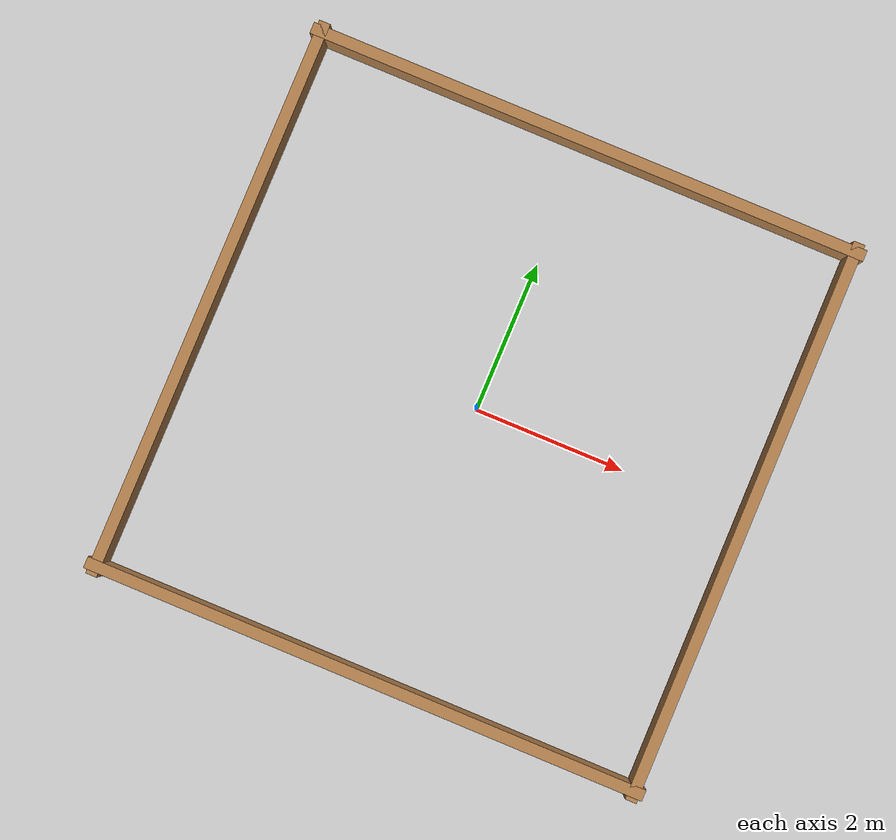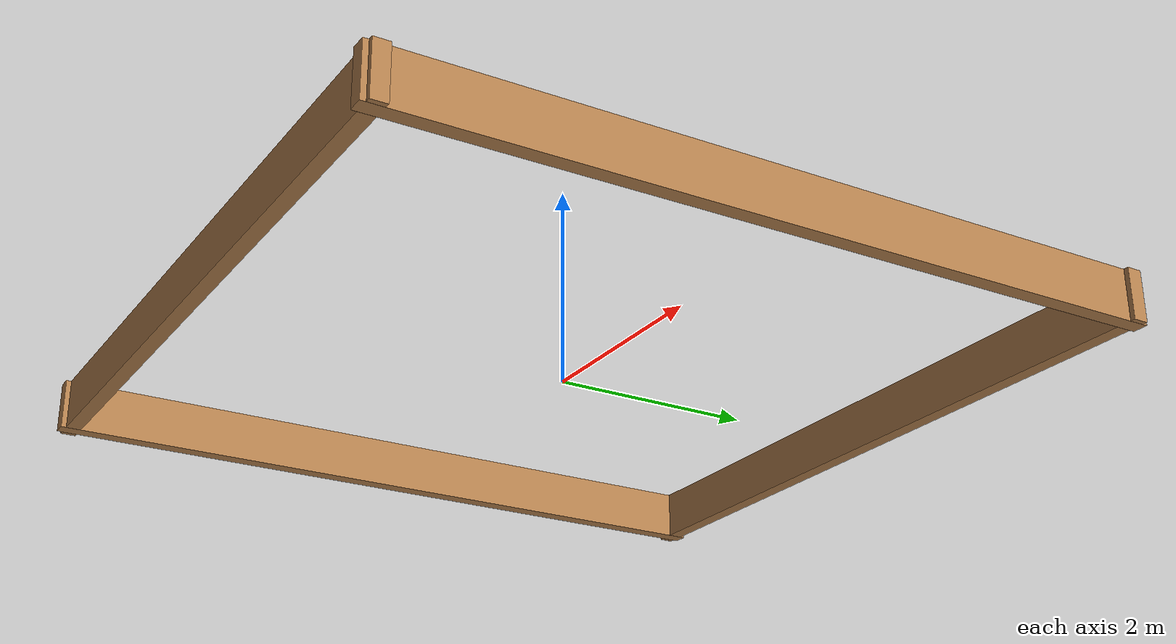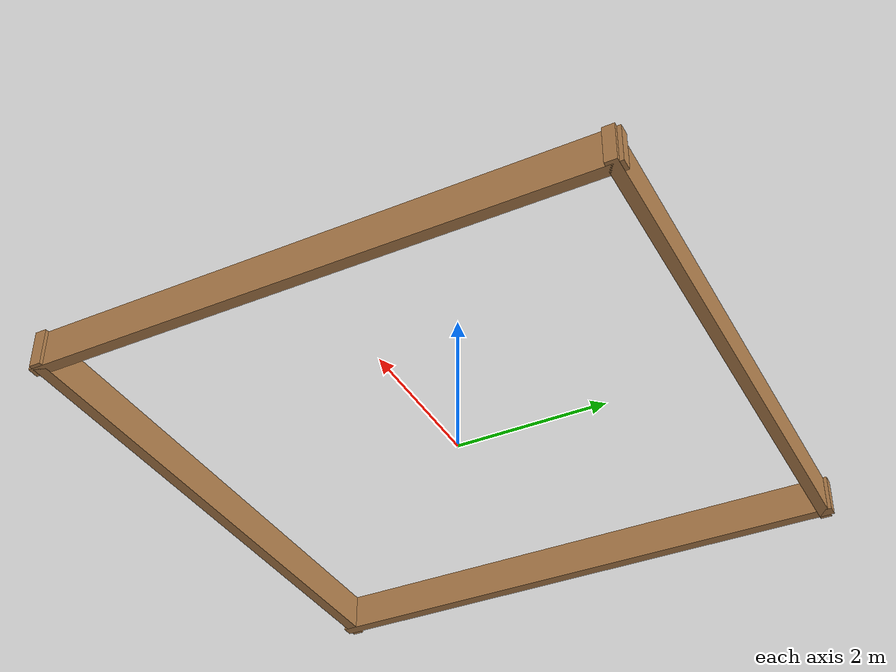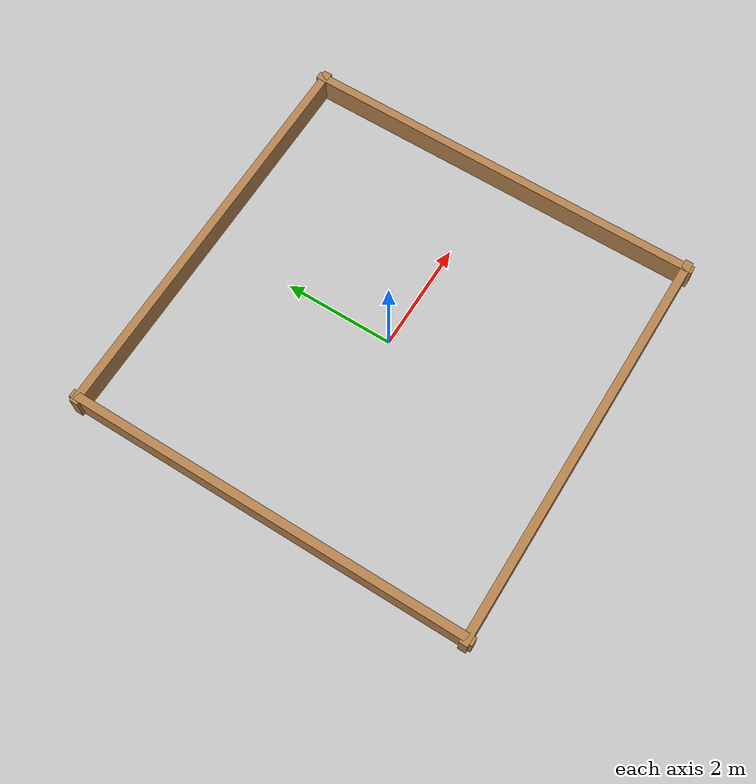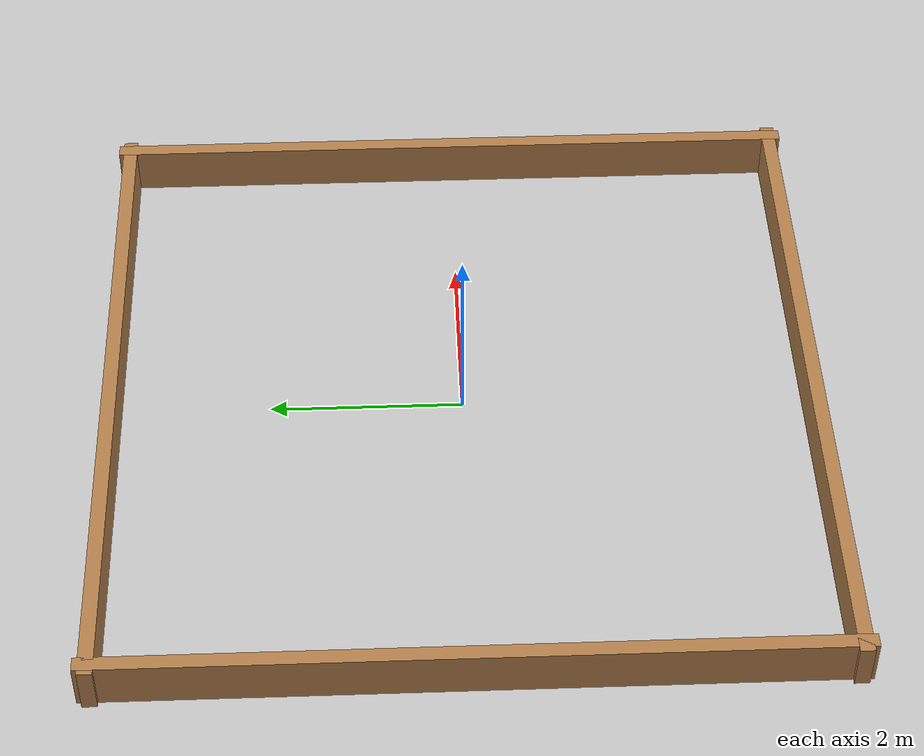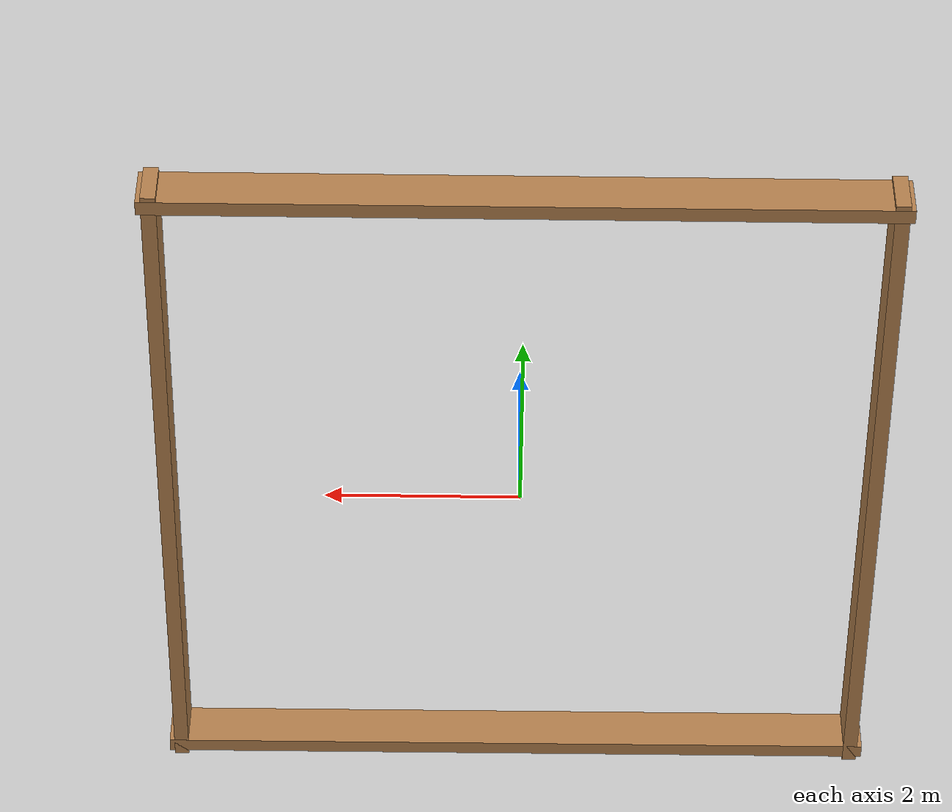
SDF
<?xml version='1.0'?>
<sdf version='1.6'>
  <model name='turtlebot3_square'>
    <pose frame=''>0 0 0 0 0 0</pose>
    <!-- Ajuste para paredes de 7.5 metros -->
    <link name='Wall_1'>
      <collision name='Wall_1_Collision'>
        <geometry>
          <box>
            <size>7.5 0.15 0.5</size>  <!-- Tamanho ajustado para 7.5 metros -->
          </box>
        </geometry>
        <pose frame=''>0 0 0.25 0 0 0</pose>
      </collision>
      <visual name='Wall_1_Visual'>
        <pose frame=''>0 0 0.25 0 0 0</pose>
        <geometry>
          <box>
            <size>7.5 0.15 0.5</size> <!-- Tamanho ajustado para 7.5 metros -->
          </box>
        </geometry>
        <material>
          <script>
            <uri>file://media/materials/scripts/gazebo.material</uri>
            <name>Gazebo/Wood</name>
          </script>
          <ambient>1 1 1 1</ambient>
        </material>
      </visual>
      <pose frame=''>-3.625 0 0 0 0 1.5708</pose> <!-- Posição ajustada -->
    </link>
    <link name='Wall_2'>
      <collision name='Wall_2_Collision'>
        <geometry>
          <box>
            <size>7.5 0.15 0.5</size> <!-- Tamanho ajustado para 7.5 metros -->
          </box>
        </geometry>
        <pose frame=''>0 0 0.25 0 0 0</pose>
      </collision>
      <visual name='Wall_2_Visual'>
        <pose frame=''>0 0 0.25 0 0 0</pose>
        <geometry>
          <box>
            <size>7.5 0.15 0.5</size> <!-- Tamanho ajustado para 7.5 metros -->
          </box>
        </geometry>
        <material>
          <script>
            <uri>file://media/materials/scripts/gazebo.material</uri>
            <name>Gazebo/Wood</name>
          </script>
          <ambient>1 1 1 1</ambient>
        </material>
      </visual>
      <pose frame=''>0 3.625 0 0 0 0</pose> <!-- Posição ajustada -->
    </link>
    <link name='Wall_3'>
      <collision name='Wall_3_Collision'>
        <geometry>
          <box>
            <size>7.5 0.15 0.5</size> <!-- Tamanho ajustado para 7.5 metros -->
          </box>
        </geometry>
        <pose frame=''>0 0 0.25 0 0 0</pose>
      </collision>
      <visual name='Wall_3_Visual'>
        <pose frame=''>0 0 0.25 0 0 0</pose>
        <geometry>
          <box>
            <size>7.5 0.15 0.5</size> <!-- Tamanho ajustado para 7.5 metros -->
          </box>
        </geometry>
        <material>
          <script>
            <uri>file://media/materials/scripts/gazebo.material</uri>
            <name>Gazebo/Wood</name>
          </script>
          <ambient>1 1 1 1</ambient>
        </material>
      </visual>
      <pose frame=''>3.625 0 0 0 0 -1.5708</pose> <!-- Posição ajustada -->
    </link>
    <link name='Wall_4'>
      <collision name='Wall_4_Collision'>
        <geometry>
          <box>
            <size>7.5 0.15 0.5</size> <!-- Tamanho ajustado para 7.5 metros -->
          </box>
        </geometry>
        <pose frame=''>0 0 0.25 0 0 0</pose>
      </collision>
      <visual name='Wall_4_Visual'>
        <pose frame=''>0 0 0.25 0 0 0</pose>
        <geometry>
          <box>
            <size>7.5 0.15 0.5</size> <!-- Tamanho ajustado para 7.5 metros -->
          </box>
        </geometry>
        <material>
          <script>
            <uri>file://media/materials/scripts/gazebo.material</uri>
            <name>Gazebo/Wood</name>
          </script>
          <ambient>1 1 1 1</ambient>
        </material>
      </visual>
      <pose frame=''>0 -3.625 0 0 -0 3.14159</pose> <!-- Correção para a posição -->
    </link>
    <static>1</static>
  </model>
</sdf>
